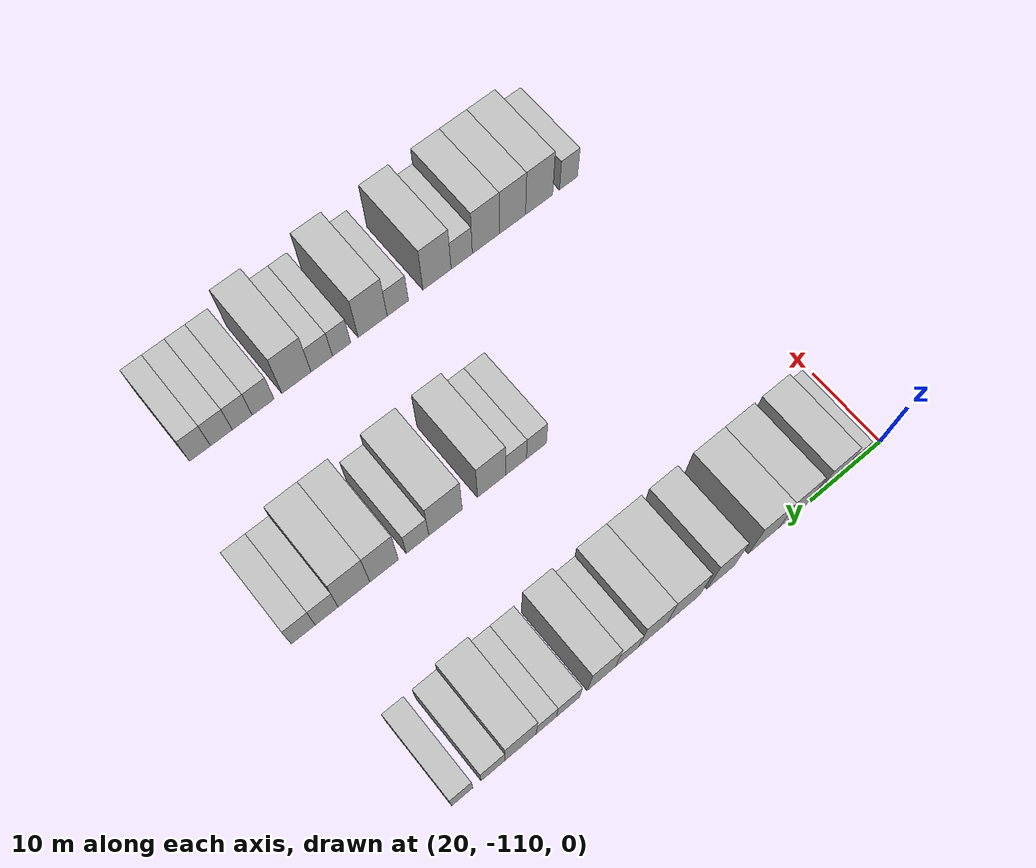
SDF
<sdf version="1.6">
 <world name="default">
  <model name="building_39">
   <static>1</static>
   <pose>25.0000 -105.4307 0 0.000000 0.000000 0.000000</pose>
   <link name="link">
    <pose>0 0 3.00 0 0 0</pose>
    <collision name="collision"><geometry><box><size>10.0000 2.6093 6.0000</size></box></geometry></collision>
    <visual name="visual">
     <cast_shadows>0</cast_shadows>
     <geometry><box><size>10.0000 2.6093 6.0000</size></box></geometry>
     <material>
      <script>
       <uri>model://HANNAS_wall/materials/scripts</uri>
       <uri>model://HANNAS_wall/materials/textures</uri>
       <name>vrc/HANNAS_wall</name>
      </script>
     </material>
    </visual>
   </link>
  </model>
  <model name="building_40">
   <static>1</static>
   <pose>25.0000 -102.2450 0 0.000000 0.000000 0.000000</pose>
   <link name="link">
    <pose>0 0 4.50 0 0 0</pose>
    <collision name="collision"><geometry><box><size>10.0000 3.7620 9.0000</size></box></geometry></collision>
    <visual name="visual">
     <cast_shadows>0</cast_shadows>
     <geometry><box><size>10.0000 3.7620 9.0000</size></box></geometry>
     <material>
      <script>
       <uri>model://HANNAS_wall/materials/scripts</uri>
       <uri>model://HANNAS_wall/materials/textures</uri>
       <name>vrc/HANNAS_wall</name>
      </script>
     </material>
    </visual>
   </link>
  </model>
  <model name="building_41">
   <static>1</static>
   <pose>25.0000 -97.3944 0 0.000000 0.000000 0.000000</pose>
   <link name="link">
    <pose>0 0 4.50 0 0 0</pose>
    <collision name="collision"><geometry><box><size>10.0000 3.9393 9.0000</size></box></geometry></collision>
    <visual name="visual">
     <cast_shadows>0</cast_shadows>
     <geometry><box><size>10.0000 3.9393 9.0000</size></box></geometry>
     <material>
      <script>
       <uri>model://HANNAS_wall/materials/scripts</uri>
       <uri>model://HANNAS_wall/materials/textures</uri>
       <name>vrc/HANNAS_wall</name>
      </script>
     </material>
    </visual>
   </link>
  </model>
  <model name="building_42">
   <static>1</static>
   <pose>25.0000 -93.3240 0 0.000000 0.000000 0.000000</pose>
   <link name="link">
    <pose>0 0 4.50 0 0 0</pose>
    <collision name="collision"><geometry><box><size>10.0000 4.2016 9.0000</size></box></geometry></collision>
    <visual name="visual">
     <cast_shadows>0</cast_shadows>
     <geometry><box><size>10.0000 4.2016 9.0000</size></box></geometry>
     <material>
      <script>
       <uri>model://HANNAS_wall/materials/scripts</uri>
       <uri>model://HANNAS_wall/materials/textures</uri>
       <name>vrc/HANNAS_wall</name>
      </script>
     </material>
    </visual>
   </link>
  </model>
  <model name="building_43">
   <static>1</static>
   <pose>25.0000 -87.3936 0 0.000000 0.000000 0.000000</pose>
   <link name="link">
    <pose>0 0 4.50 0 0 0</pose>
    <collision name="collision"><geometry><box><size>10.0000 3.6592 9.0000</size></box></geometry></collision>
    <visual name="visual">
     <cast_shadows>0</cast_shadows>
     <geometry><box><size>10.0000 3.6592 9.0000</size></box></geometry>
     <material>
      <script>
       <uri>model://HANNAS_wall/materials/scripts</uri>
       <uri>model://HANNAS_wall/materials/textures</uri>
       <name>vrc/HANNAS_wall</name>
      </script>
     </material>
    </visual>
   </link>
  </model>
  <model name="building_44">
   <static>1</static>
   <pose>25.0000 -82.3595 0 0.000000 0.000000 0.000000</pose>
   <link name="link">
    <pose>0 0 4.50 0 0 0</pose>
    <collision name="collision"><geometry><box><size>10.0000 4.4090 9.0000</size></box></geometry></collision>
    <visual name="visual">
     <cast_shadows>0</cast_shadows>
     <geometry><box><size>10.0000 4.4090 9.0000</size></box></geometry>
     <material>
      <script>
       <uri>model://HANNAS_wall/materials/scripts</uri>
       <uri>model://HANNAS_wall/materials/textures</uri>
       <name>vrc/HANNAS_wall</name>
      </script>
     </material>
    </visual>
   </link>
  </model>
  <model name="building_45">
   <static>1</static>
   <pose>25.0000 -78.2669 0 0.000000 0.000000 0.000000</pose>
   <link name="link">
    <pose>0 0 4.50 0 0 0</pose>
    <collision name="collision"><geometry><box><size>10.0000 3.7761 9.0000</size></box></geometry></collision>
    <visual name="visual">
     <cast_shadows>0</cast_shadows>
     <geometry><box><size>10.0000 3.7761 9.0000</size></box></geometry>
     <material>
      <script>
       <uri>model://HANNAS_wall/materials/scripts</uri>
       <uri>model://HANNAS_wall/materials/textures</uri>
       <name>vrc/HANNAS_wall</name>
      </script>
     </material>
    </visual>
   </link>
  </model>
  <model name="building_46">
   <static>1</static>
   <pose>25.0000 -74.8903 0 0.000000 0.000000 0.000000</pose>
   <link name="link">
    <pose>0 0 3.00 0 0 0</pose>
    <collision name="collision"><geometry><box><size>10.0000 2.9773 6.0000</size></box></geometry></collision>
    <visual name="visual">
     <cast_shadows>0</cast_shadows>
     <geometry><box><size>10.0000 2.9773 6.0000</size></box></geometry>
     <material>
      <script>
       <uri>model://HANNAS_wall/materials/scripts</uri>
       <uri>model://HANNAS_wall/materials/textures</uri>
       <name>vrc/HANNAS_wall</name>
      </script>
     </material>
    </visual>
   </link>
  </model>
  <model name="building_47">
   <static>1</static>
   <pose>25.0000 -71.5794 0 0.000000 0.000000 0.000000</pose>
   <link name="link">
    <pose>0 0 4.50 0 0 0</pose>
    <collision name="collision"><geometry><box><size>10.0000 3.6445 9.0000</size></box></geometry></collision>
    <visual name="visual">
     <cast_shadows>0</cast_shadows>
     <geometry><box><size>10.0000 3.6445 9.0000</size></box></geometry>
     <material>
      <script>
       <uri>model://HANNAS_wall/materials/scripts</uri>
       <uri>model://HANNAS_wall/materials/textures</uri>
       <name>vrc/HANNAS_wall</name>
      </script>
     </material>
    </visual>
   </link>
  </model>
  <model name="building_48">
   <static>1</static>
   <pose>25.0000 -67.2773 0 0.000000 0.000000 0.000000</pose>
   <link name="link">
    <pose>0 0 3.00 0 0 0</pose>
    <collision name="collision"><geometry><box><size>10.0000 2.9596 6.0000</size></box></geometry></collision>
    <visual name="visual">
     <cast_shadows>0</cast_shadows>
     <geometry><box><size>10.0000 2.9596 6.0000</size></box></geometry>
     <material>
      <script>
       <uri>model://HANNAS_wall/materials/scripts</uri>
       <uri>model://HANNAS_wall/materials/textures</uri>
       <name>vrc/HANNAS_wall</name>
      </script>
     </material>
    </visual>
   </link>
  </model>
  <model name="building_49">
   <static>1</static>
   <pose>25.0000 -64.5204 0 0.000000 0.000000 0.000000</pose>
   <link name="link">
    <pose>0 0 3.00 0 0 0</pose>
    <collision name="collision"><geometry><box><size>10.0000 2.5544 6.0000</size></box></geometry></collision>
    <visual name="visual">
     <cast_shadows>0</cast_shadows>
     <geometry><box><size>10.0000 2.5544 6.0000</size></box></geometry>
     <material>
      <script>
       <uri>model://HANNAS_wall/materials/scripts</uri>
       <uri>model://HANNAS_wall/materials/textures</uri>
       <name>vrc/HANNAS_wall</name>
      </script>
     </material>
    </visual>
   </link>
  </model>
  <model name="building_50">
   <static>1</static>
   <pose>25.0000 -61.3124 0 0.000000 0.000000 0.000000</pose>
   <link name="link">
    <pose>0 0 4.50 0 0 0</pose>
    <collision name="collision"><geometry><box><size>10.0000 3.8616 9.0000</size></box></geometry></collision>
    <visual name="visual">
     <cast_shadows>0</cast_shadows>
     <geometry><box><size>10.0000 3.8616 9.0000</size></box></geometry>
     <material>
      <script>
       <uri>model://HANNAS_wall/materials/scripts</uri>
       <uri>model://HANNAS_wall/materials/textures</uri>
       <name>vrc/HANNAS_wall</name>
      </script>
     </material>
    </visual>
   </link>
  </model>
  <model name="building_51">
   <static>1</static>
   <pose>25.0000 -57.9174 0 0.000000 0.000000 0.000000</pose>
   <link name="link">
    <pose>0 0 3.00 0 0 0</pose>
    <collision name="collision"><geometry><box><size>10.0000 2.9283 6.0000</size></box></geometry></collision>
    <visual name="visual">
     <cast_shadows>0</cast_shadows>
     <geometry><box><size>10.0000 2.9283 6.0000</size></box></geometry>
     <material>
      <script>
       <uri>model://HANNAS_wall/materials/scripts</uri>
       <uri>model://HANNAS_wall/materials/textures</uri>
       <name>vrc/HANNAS_wall</name>
      </script>
     </material>
    </visual>
   </link>
  </model>
  <model name="building_52">
   <static>1</static>
   <pose>25.0000 -54.1649 0 0.000000 0.000000 0.000000</pose>
   <link name="link">
    <pose>0 0 3.00 0 0 0</pose>
    <collision name="collision"><geometry><box><size>10.0000 2.5767 6.0000</size></box></geometry></collision>
    <visual name="visual">
     <cast_shadows>0</cast_shadows>
     <geometry><box><size>10.0000 2.5767 6.0000</size></box></geometry>
     <material>
      <script>
       <uri>model://HANNAS_wall/materials/scripts</uri>
       <uri>model://HANNAS_wall/materials/textures</uri>
       <name>vrc/HANNAS_wall</name>
      </script>
     </material>
    </visual>
   </link>
  </model>
  <model name="building_173">
   <static>1</static>
   <pose>47.0000 -81.7800 0 0.000000 0.000000 0.000000</pose>
   <link name="link">
    <pose>0 0 3.00 0 0 0</pose>
    <collision name="collision"><geometry><box><size>10.0000 2.6820 6.0000</size></box></geometry></collision>
    <visual name="visual">
     <cast_shadows>0</cast_shadows>
     <geometry><box><size>10.0000 2.6820 6.0000</size></box></geometry>
     <material>
      <script>
       <uri>model://HANNAS_wall/materials/scripts</uri>
       <uri>model://HANNAS_wall/materials/textures</uri>
       <name>vrc/HANNAS_wall</name>
      </script>
     </material>
    </visual>
   </link>
  </model>
  <model name="building_174">
   <static>1</static>
   <pose>47.0000 -79.0399 0 0.000000 0.000000 0.000000</pose>
   <link name="link">
    <pose>0 0 3.00 0 0 0</pose>
    <collision name="collision"><geometry><box><size>10.0000 2.7982 6.0000</size></box></geometry></collision>
    <visual name="visual">
     <cast_shadows>0</cast_shadows>
     <geometry><box><size>10.0000 2.7982 6.0000</size></box></geometry>
     <material>
      <script>
       <uri>model://HANNAS_wall/materials/scripts</uri>
       <uri>model://HANNAS_wall/materials/textures</uri>
       <name>vrc/HANNAS_wall</name>
      </script>
     </material>
    </visual>
   </link>
  </model>
  <model name="building_175">
   <static>1</static>
   <pose>47.0000 -75.7747 0 0.000000 0.000000 0.000000</pose>
   <link name="link">
    <pose>0 0 4.50 0 0 0</pose>
    <collision name="collision"><geometry><box><size>10.0000 3.7322 9.0000</size></box></geometry></collision>
    <visual name="visual">
     <cast_shadows>0</cast_shadows>
     <geometry><box><size>10.0000 3.7322 9.0000</size></box></geometry>
     <material>
      <script>
       <uri>model://HANNAS_wall/materials/scripts</uri>
       <uri>model://HANNAS_wall/materials/textures</uri>
       <name>vrc/HANNAS_wall</name>
      </script>
     </material>
    </visual>
   </link>
  </model>
  <model name="building_176">
   <static>1</static>
   <pose>47.0000 -69.7453 0 0.000000 0.000000 0.000000</pose>
   <link name="link">
    <pose>0 0 4.50 0 0 0</pose>
    <collision name="collision"><geometry><box><size>10.0000 4.3265 9.0000</size></box></geometry></collision>
    <visual name="visual">
     <cast_shadows>0</cast_shadows>
     <geometry><box><size>10.0000 4.3265 9.0000</size></box></geometry>
     <material>
      <script>
       <uri>model://HANNAS_wall/materials/scripts</uri>
       <uri>model://HANNAS_wall/materials/textures</uri>
       <name>vrc/HANNAS_wall</name>
      </script>
     </material>
    </visual>
   </link>
  </model>
  <model name="building_177">
   <static>1</static>
   <pose>47.0000 -66.1198 0 0.000000 0.000000 0.000000</pose>
   <link name="link">
    <pose>0 0 3.00 0 0 0</pose>
    <collision name="collision"><geometry><box><size>10.0000 2.9246 6.0000</size></box></geometry></collision>
    <visual name="visual">
     <cast_shadows>0</cast_shadows>
     <geometry><box><size>10.0000 2.9246 6.0000</size></box></geometry>
     <material>
      <script>
       <uri>model://HANNAS_wall/materials/scripts</uri>
       <uri>model://HANNAS_wall/materials/textures</uri>
       <name>vrc/HANNAS_wall</name>
      </script>
     </material>
    </visual>
   </link>
  </model>
  <model name="building_178">
   <static>1</static>
   <pose>47.0000 -61.8467 0 0.000000 0.000000 0.000000</pose>
   <link name="link">
    <pose>0 0 4.50 0 0 0</pose>
    <collision name="collision"><geometry><box><size>10.0000 3.6215 9.0000</size></box></geometry></collision>
    <visual name="visual">
     <cast_shadows>0</cast_shadows>
     <geometry><box><size>10.0000 3.6215 9.0000</size></box></geometry>
     <material>
      <script>
       <uri>model://HANNAS_wall/materials/scripts</uri>
       <uri>model://HANNAS_wall/materials/textures</uri>
       <name>vrc/HANNAS_wall</name>
      </script>
     </material>
    </visual>
   </link>
  </model>
  <model name="building_179">
   <static>1</static>
   <pose>47.0000 -58.0517 0 0.000000 0.000000 0.000000</pose>
   <link name="link">
    <pose>0 0 4.50 0 0 0</pose>
    <collision name="collision"><geometry><box><size>10.0000 3.9684 9.0000</size></box></geometry></collision>
    <visual name="visual">
     <cast_shadows>0</cast_shadows>
     <geometry><box><size>10.0000 3.9684 9.0000</size></box></geometry>
     <material>
      <script>
       <uri>model://HANNAS_wall/materials/scripts</uri>
       <uri>model://HANNAS_wall/materials/textures</uri>
       <name>vrc/HANNAS_wall</name>
      </script>
     </material>
    </visual>
   </link>
  </model>
  <model name="building_180">
   <static>1</static>
   <pose>47.0000 -54.6478 0 0.000000 0.000000 0.000000</pose>
   <link name="link">
    <pose>0 0 3.00 0 0 0</pose>
    <collision name="collision"><geometry><box><size>10.0000 2.8395 6.0000</size></box></geometry></collision>
    <visual name="visual">
     <cast_shadows>0</cast_shadows>
     <geometry><box><size>10.0000 2.8395 6.0000</size></box></geometry>
     <material>
      <script>
       <uri>model://HANNAS_wall/materials/scripts</uri>
       <uri>model://HANNAS_wall/materials/textures</uri>
       <name>vrc/HANNAS_wall</name>
      </script>
     </material>
    </visual>
   </link>
  </model>
  <model name="building_181">
   <static>1</static>
   <pose>47.0000 -51.7622 0 0.000000 0.000000 0.000000</pose>
   <link name="link">
    <pose>0 0 3.00 0 0 0</pose>
    <collision name="collision"><geometry><box><size>10.0000 2.9319 6.0000</size></box></geometry></collision>
    <visual name="visual">
     <cast_shadows>0</cast_shadows>
     <geometry><box><size>10.0000 2.9319 6.0000</size></box></geometry>
     <material>
      <script>
       <uri>model://HANNAS_wall/materials/scripts</uri>
       <uri>model://HANNAS_wall/materials/textures</uri>
       <name>vrc/HANNAS_wall</name>
      </script>
     </material>
    </visual>
   </link>
  </model>
  <model name="building_283">
   <static>1</static>
   <pose>69.0000 -104.9554 0 0.000000 0.000000 0.000000</pose>
   <link name="link">
    <pose>0 0 3.00 0 0 0</pose>
    <collision name="collision"><geometry><box><size>10.0000 2.6395 6.0000</size></box></geometry></collision>
    <visual name="visual">
     <cast_shadows>0</cast_shadows>
     <geometry><box><size>10.0000 2.6395 6.0000</size></box></geometry>
     <material>
      <script>
       <uri>model://HANNAS_wall/materials/scripts</uri>
       <uri>model://HANNAS_wall/materials/textures</uri>
       <name>vrc/HANNAS_wall</name>
      </script>
     </material>
    </visual>
   </link>
  </model>
  <model name="building_284">
   <static>1</static>
   <pose>69.0000 -100.6684 0 0.000000 0.000000 0.000000</pose>
   <link name="link">
    <pose>0 0 4.50 0 0 0</pose>
    <collision name="collision"><geometry><box><size>10.0000 3.9346 9.0000</size></box></geometry></collision>
    <visual name="visual">
     <cast_shadows>0</cast_shadows>
     <geometry><box><size>10.0000 3.9346 9.0000</size></box></geometry>
     <material>
      <script>
       <uri>model://HANNAS_wall/materials/scripts</uri>
       <uri>model://HANNAS_wall/materials/textures</uri>
       <name>vrc/HANNAS_wall</name>
      </script>
     </material>
    </visual>
   </link>
  </model>
  <model name="building_285">
   <static>1</static>
   <pose>69.0000 -96.8280 0 0.000000 0.000000 0.000000</pose>
   <link name="link">
    <pose>0 0 4.50 0 0 0</pose>
    <collision name="collision"><geometry><box><size>10.0000 3.7462 9.0000</size></box></geometry></collision>
    <visual name="visual">
     <cast_shadows>0</cast_shadows>
     <geometry><box><size>10.0000 3.7462 9.0000</size></box></geometry>
     <material>
      <script>
       <uri>model://HANNAS_wall/materials/scripts</uri>
       <uri>model://HANNAS_wall/materials/textures</uri>
       <name>vrc/HANNAS_wall</name>
      </script>
     </material>
    </visual>
   </link>
  </model>
  <model name="building_286">
   <static>1</static>
   <pose>69.0000 -93.0248 0 0.000000 0.000000 0.000000</pose>
   <link name="link">
    <pose>0 0 4.50 0 0 0</pose>
    <collision name="collision"><geometry><box><size>10.0000 3.8602 9.0000</size></box></geometry></collision>
    <visual name="visual">
     <cast_shadows>0</cast_shadows>
     <geometry><box><size>10.0000 3.8602 9.0000</size></box></geometry>
     <material>
      <script>
       <uri>model://HANNAS_wall/materials/scripts</uri>
       <uri>model://HANNAS_wall/materials/textures</uri>
       <name>vrc/HANNAS_wall</name>
      </script>
     </material>
    </visual>
   </link>
  </model>
  <model name="building_287">
   <static>1</static>
   <pose>69.0000 -89.6012 0 0.000000 0.000000 0.000000</pose>
   <link name="link">
    <pose>0 0 3.00 0 0 0</pose>
    <collision name="collision"><geometry><box><size>10.0000 2.9872 6.0000</size></box></geometry></collision>
    <visual name="visual">
     <cast_shadows>0</cast_shadows>
     <geometry><box><size>10.0000 2.9872 6.0000</size></box></geometry>
     <material>
      <script>
       <uri>model://HANNAS_wall/materials/scripts</uri>
       <uri>model://HANNAS_wall/materials/textures</uri>
       <name>vrc/HANNAS_wall</name>
      </script>
     </material>
    </visual>
   </link>
  </model>
  <model name="building_288">
   <static>1</static>
   <pose>69.0000 -86.1478 0 0.000000 0.000000 0.000000</pose>
   <link name="link">
    <pose>0 0 4.50 0 0 0</pose>
    <collision name="collision"><geometry><box><size>10.0000 3.9196 9.0000</size></box></geometry></collision>
    <visual name="visual">
     <cast_shadows>0</cast_shadows>
     <geometry><box><size>10.0000 3.9196 9.0000</size></box></geometry>
     <material>
      <script>
       <uri>model://HANNAS_wall/materials/scripts</uri>
       <uri>model://HANNAS_wall/materials/textures</uri>
       <name>vrc/HANNAS_wall</name>
      </script>
     </material>
    </visual>
   </link>
  </model>
  <model name="building_289">
   <static>1</static>
   <pose>69.0000 -80.7338 0 0.000000 0.000000 0.000000</pose>
   <link name="link">
    <pose>0 0 3.00 0 0 0</pose>
    <collision name="collision"><geometry><box><size>10.0000 2.9084 6.0000</size></box></geometry></collision>
    <visual name="visual">
     <cast_shadows>0</cast_shadows>
     <geometry><box><size>10.0000 2.9084 6.0000</size></box></geometry>
     <material>
      <script>
       <uri>model://HANNAS_wall/materials/scripts</uri>
       <uri>model://HANNAS_wall/materials/textures</uri>
       <name>vrc/HANNAS_wall</name>
      </script>
     </material>
    </visual>
   </link>
  </model>
  <model name="building_290">
   <static>1</static>
   <pose>69.0000 -77.3169 0 0.000000 0.000000 0.000000</pose>
   <link name="link">
    <pose>0 0 4.50 0 0 0</pose>
    <collision name="collision"><geometry><box><size>10.0000 3.9254 9.0000</size></box></geometry></collision>
    <visual name="visual">
     <cast_shadows>0</cast_shadows>
     <geometry><box><size>10.0000 3.9254 9.0000</size></box></geometry>
     <material>
      <script>
       <uri>model://HANNAS_wall/materials/scripts</uri>
       <uri>model://HANNAS_wall/materials/textures</uri>
       <name>vrc/HANNAS_wall</name>
      </script>
     </material>
    </visual>
   </link>
  </model>
  <model name="building_291">
   <static>1</static>
   <pose>69.0000 -73.1343 0 0.000000 0.000000 0.000000</pose>
   <link name="link">
    <pose>0 0 3.00 0 0 0</pose>
    <collision name="collision"><geometry><box><size>10.0000 2.4396 6.0000</size></box></geometry></collision>
    <visual name="visual">
     <cast_shadows>0</cast_shadows>
     <geometry><box><size>10.0000 2.4396 6.0000</size></box></geometry>
     <material>
      <script>
       <uri>model://HANNAS_wall/materials/scripts</uri>
       <uri>model://HANNAS_wall/materials/textures</uri>
       <name>vrc/HANNAS_wall</name>
      </script>
     </material>
    </visual>
   </link>
  </model>
  <model name="building_292">
   <static>1</static>
   <pose>69.0000 -70.4953 0 0.000000 0.000000 0.000000</pose>
   <link name="link">
    <pose>0 0 3.00 0 0 0</pose>
    <collision name="collision"><geometry><box><size>10.0000 2.8383 6.0000</size></box></geometry></collision>
    <visual name="visual">
     <cast_shadows>0</cast_shadows>
     <geometry><box><size>10.0000 2.8383 6.0000</size></box></geometry>
     <material>
      <script>
       <uri>model://HANNAS_wall/materials/scripts</uri>
       <uri>model://HANNAS_wall/materials/textures</uri>
       <name>vrc/HANNAS_wall</name>
      </script>
     </material>
    </visual>
   </link>
  </model>
  <model name="building_293">
   <static>1</static>
   <pose>69.0000 -67.1597 0 0.000000 0.000000 0.000000</pose>
   <link name="link">
    <pose>0 0 4.50 0 0 0</pose>
    <collision name="collision"><geometry><box><size>10.0000 3.8330 9.0000</size></box></geometry></collision>
    <visual name="visual">
     <cast_shadows>0</cast_shadows>
     <geometry><box><size>10.0000 3.8330 9.0000</size></box></geometry>
     <material>
      <script>
       <uri>model://HANNAS_wall/materials/scripts</uri>
       <uri>model://HANNAS_wall/materials/textures</uri>
       <name>vrc/HANNAS_wall</name>
      </script>
     </material>
    </visual>
   </link>
  </model>
  <model name="building_294">
   <static>1</static>
   <pose>69.0000 -62.8281 0 0.000000 0.000000 0.000000</pose>
   <link name="link">
    <pose>0 0 3.00 0 0 0</pose>
    <collision name="collision"><geometry><box><size>10.0000 2.8302 6.0000</size></box></geometry></collision>
    <visual name="visual">
     <cast_shadows>0</cast_shadows>
     <geometry><box><size>10.0000 2.8302 6.0000</size></box></geometry>
     <material>
      <script>
       <uri>model://HANNAS_wall/materials/scripts</uri>
       <uri>model://HANNAS_wall/materials/textures</uri>
       <name>vrc/HANNAS_wall</name>
      </script>
     </material>
    </visual>
   </link>
  </model>
  <model name="building_295">
   <static>1</static>
   <pose>69.0000 -60.1333 0 0.000000 0.000000 0.000000</pose>
   <link name="link">
    <pose>0 0 3.00 0 0 0</pose>
    <collision name="collision"><geometry><box><size>10.0000 2.5593 6.0000</size></box></geometry></collision>
    <visual name="visual">
     <cast_shadows>0</cast_shadows>
     <geometry><box><size>10.0000 2.5593 6.0000</size></box></geometry>
     <material>
      <script>
       <uri>model://HANNAS_wall/materials/scripts</uri>
       <uri>model://HANNAS_wall/materials/textures</uri>
       <name>vrc/HANNAS_wall</name>
      </script>
     </material>
    </visual>
   </link>
  </model>
  <model name="building_296">
   <static>1</static>
   <pose>69.0000 -57.4644 0 0.000000 0.000000 0.000000</pose>
   <link name="link">
    <pose>0 0 3.00 0 0 0</pose>
    <collision name="collision"><geometry><box><size>10.0000 2.7786 6.0000</size></box></geometry></collision>
    <visual name="visual">
     <cast_shadows>0</cast_shadows>
     <geometry><box><size>10.0000 2.7786 6.0000</size></box></geometry>
     <material>
      <script>
       <uri>model://HANNAS_wall/materials/scripts</uri>
       <uri>model://HANNAS_wall/materials/textures</uri>
       <name>vrc/HANNAS_wall</name>
      </script>
     </material>
    </visual>
   </link>
  </model>
  <model name="building_297">
   <static>1</static>
   <pose>69.0000 -54.7518 0 0.000000 0.000000 0.000000</pose>
   <link name="link">
    <pose>0 0 3.00 0 0 0</pose>
    <collision name="collision"><geometry><box><size>10.0000 2.6466 6.0000</size></box></geometry></collision>
    <visual name="visual">
     <cast_shadows>0</cast_shadows>
     <geometry><box><size>10.0000 2.6466 6.0000</size></box></geometry>
     <material>
      <script>
       <uri>model://HANNAS_wall/materials/scripts</uri>
       <uri>model://HANNAS_wall/materials/textures</uri>
       <name>vrc/HANNAS_wall</name>
      </script>
     </material>
    </visual>
   </link>
  </model>
 </world>
</sdf>
